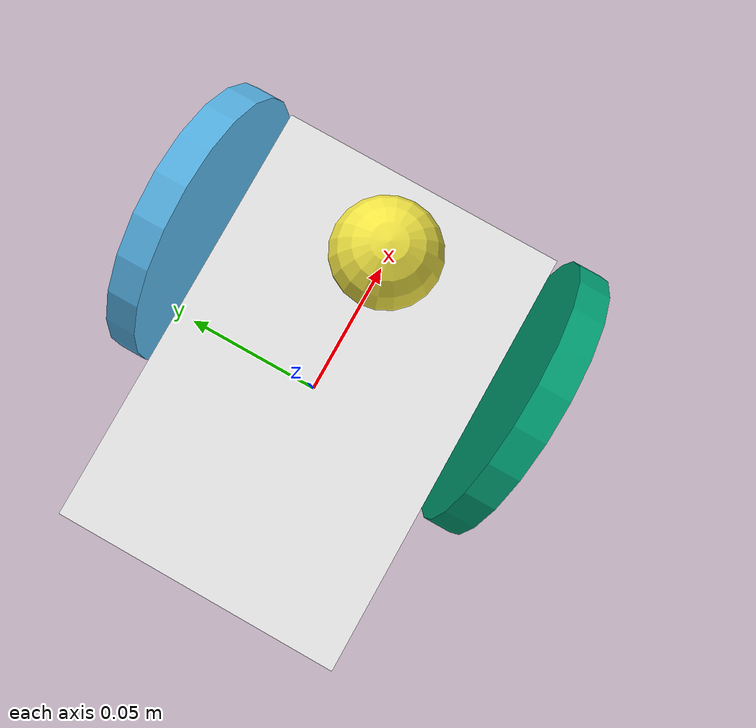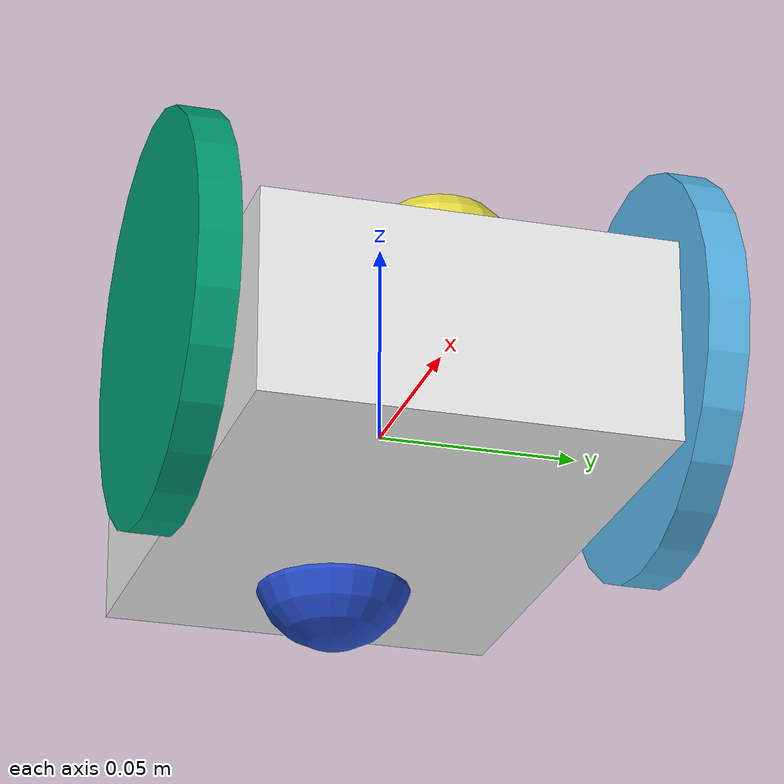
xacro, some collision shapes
<?xml version="1.0"?>

<robot xmlns:xacro="http://www.ros.org/wiki/xacro" name="sumo">

  <xacro:include filename="$(find computer_vision_pkg)/urdf/wheel.xacro" />
  <xacro:include filename="$(find computer_vision_pkg)/urdf/camera.xacro" />

  <xacro:property name="base_length" value=".15" />

  <link name="base_link">
    <visual>
      <geometry>
        <box size="${base_length} .10 .05"/>
      </geometry>
    </visual>
    <collision>
      <geometry>
        <box size=".15 .10 .05"/>
      </geometry>
    </collision>
    <inertial>
      <mass value="1"/>
      <inertia ixx="0.21" ixy="0.00" ixz="0.00" iyy="0.27" iyz="0.00" izz="0.10"/>
    </inertial>
  </link>

  <xacro:wheel prefix="right" radius="0.05" reflect="1" />
  <xacro:wheel prefix="left" radius="0.05" reflect="-1" />
  <xacro:front_camera name = "camera" />

  <link name="back_wheel">
    <visual>
      <geometry>
        <sphere radius="0.02"/>
      </geometry>
    </visual>
    <collision>
      <geometry>
        <sphere radius="0.02"/>
      </geometry>
    </collision>
    <inertial>
      <mass value="1"/>
      <inertia ixx="0.03" ixy="0.0" ixz="0.0" iyy="0.03" iyz="0.0" izz="0.03"/>
    </inertial>
  </link>

  <joint name="base_to_back_wheel" type="fixed">
    <parent link="base_link"/>
    <child link="back_wheel"/>
    <origin rpy="0 0 0" xyz="-0.04 0.00 -0.02"/>
  </joint>

  <gazebo reference="back_wheel">
    <material>Gazebo/Blue</material>
    <mu1>0.0</mu1>
    <mu2>0.0</mu2>
    <slip1>1.0</slip1>
    <slip2>1.0</slip2>
    <selfCollide>true</selfCollide>
    <gravity>true</gravity>
  </gazebo>

  <gazebo reference="base_link">
    <material>Gazebo/White</material>
    <mu1>0.0</mu1>
    <mu2>0.0</mu2>
    <selfCollide>true</selfCollide>
    <gravity>true</gravity>
  </gazebo>

  <!-- Add ROS plugin so we can interact with our robot -->
  <gazebo>
    <plugin name="gazebo_ros_control" filename="libgazebo_ros_control.so">
      <robotNamespace>/</robotNamespace>
    </plugin>
  </gazebo>
</robot>

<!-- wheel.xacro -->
<robot xmlns:xacro="http://www.ros.org/wiki/xacro" name="sumo">
  <xacro:macro name="wheel" params="prefix radius reflect">
    <link name="${prefix}_wheel">
      <visual>
        <geometry>
          <cylinder length="0.01" radius="${radius}"/>
        </geometry>
      </visual>
      <collision>
        <geometry>
          <cylinder length="0.01" radius="${radius}"/>
        </geometry>
        <surface>
          <friction>
            <ode>
              <mu>200.0</mu>
              <mu2>100.0</mu2>
            </ode>
          </friction>
        </surface>
      </collision>
      <inertial>
        <mass value="1"/>
        <inertia ixx="0.06" ixy="0.0" ixz="0.0" iyy="0.06" iyz="0.0" izz="0.25"/>
      </inertial>
    </link>

    <joint name="base_to_${prefix}_wheel" type="continuous">
      <axis xyz="0 0 1"/>
      <parent link="base_link"/>
      <child link="${prefix}_wheel"/>
      <origin rpy="1.57075 0 0" xyz=".03 ${0.06*reflect} 0.01"/>
    </joint>

    <transmission name="${prefix}_wheel_transmission">
      <type>transmission_interface/SimpleTransmission</type>
      <actuator name="$${prefix}_motor">
        <mechanicalReduction>1</mechanicalReduction>
      </actuator>
      <joint name="base_to_${prefix}_wheel">
        <hardwareInterface>hardware_interface/VelocityJointInterface</hardwareInterface>
      </joint>
    </transmission>
  </xacro:macro>
</robot>

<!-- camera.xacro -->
<robot xmlns:xacro="http://www.ros.org/wiki/xacro" name="sumo">
  <xacro:macro name="front_camera" params="name">
    <!-- Camera -->
    <link name="camera_link">
      <visual>
        <geometry>
          <mesh filename="package://computer_vision_pkg/meshes/head.dae" scale=".5 .5 .5"/>
        </geometry>
      </visual>
      <collision>
        <geometry>
          <sphere radius="0.02"/>
        </geometry>
      </collision>
      <inertial>
        <mass value="0.10"/>
        <inertia ixx="0.03" ixy="0.0" ixz="0.0" iyy="0.03" iyz="0.0" izz="0.03"/>
      </inertial>
    </link>

    <joint name="base_to_camera" type="continuous">
      <axis xyz="0 0 1"/>
      <parent link="base_link"/>
      <child link="camera_link"/>
      <origin rpy="0 0 0" xyz="0.05 0 0.02"/>
      <limit effort="30" velocity="1.0"/>
    </joint>

    <transmission name="camera_transmission">
      <type>transmission_interface/SimpleTransmission</type>
      <actuator name="$camera_motor">
        <mechanicalReduction>1</mechanicalReduction>
      </actuator>
      <joint name="base_to_camera">
        <hardwareInterface>hardware_interface/PositionJointInterface</hardwareInterface>
      </joint>
    </transmission>

    <gazebo reference="camera_link">
    <sensor type="camera" name="camera1">
      <update_rate>30.0</update_rate>
      <camera name="camera">
        <horizontal_fov>1.3962634</horizontal_fov>
        <image>
          <width>800</width>
          <height>800</height>
          <format>R8G8B8</format>
        </image>
        <clip>
          <near>0.02</near>
          <far>300</far>
        </clip>
        <noise>
          <type>gaussian</type>
          <!-- Noise is sampled independently per pixel on each frame.
               That pixel's noise value is added to each of its color
               channels, which at that point lie in the range [0,1]. -->
          <mean>0.0</mean>
          <stddev>0.007</stddev>
        </noise>
      </camera>
      <plugin name="camera_controller" filename="libgazebo_ros_camera.so">
        <alwaysOn>true</alwaysOn>
        <updateRate>0.0</updateRate>
        <cameraName>camera</cameraName>
        <imageTopicName>image_raw</imageTopicName>
        <cameraInfoTopicName>camera_info</cameraInfoTopicName>
        <frameName>camera_link</frameName>
        <hackBaseline>0.07</hackBaseline>
        <distortionK1>0.0</distortionK1>
        <distortionK2>0.0</distortionK2>
        <distortionK3>0.0</distortionK3>
        <distortionT1>0.0</distortionT1>
        <distortionT2>0.0</distortionT2>
      </plugin>
    </sensor>
  </gazebo>
  </xacro:macro>
</robot>
